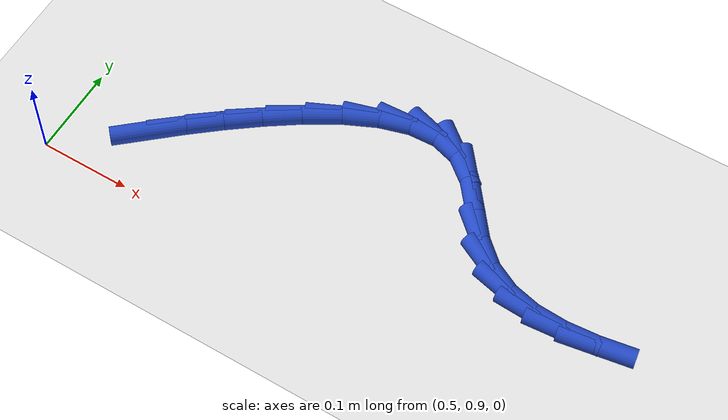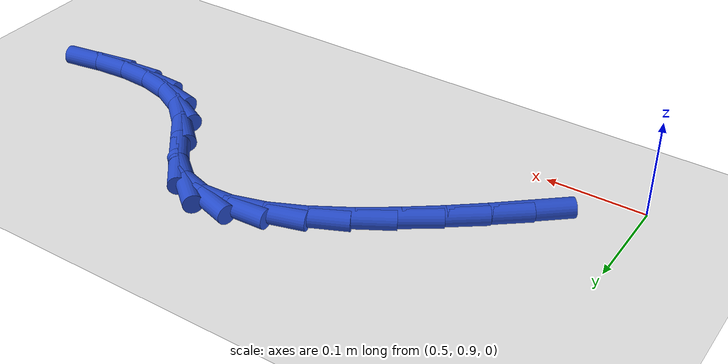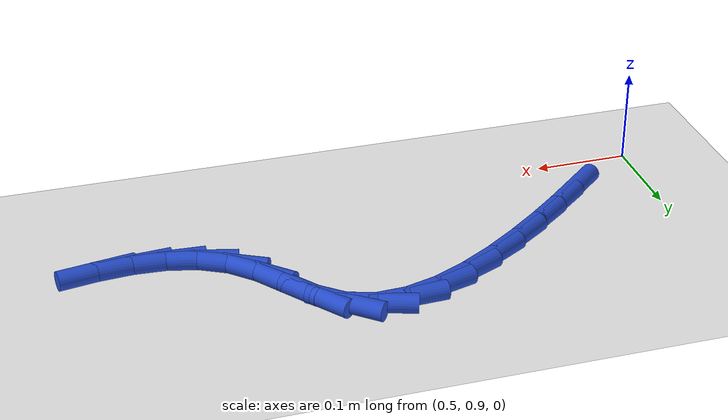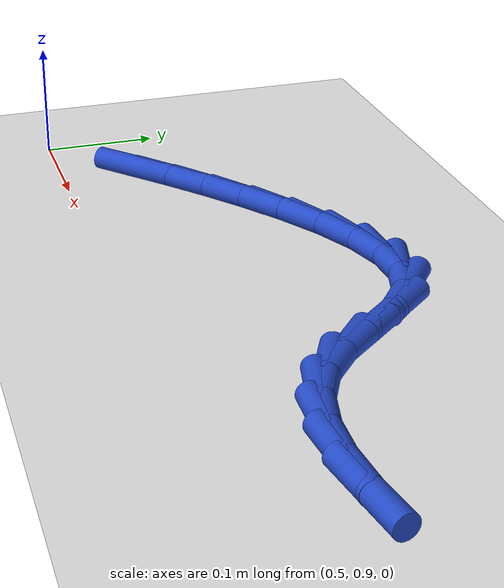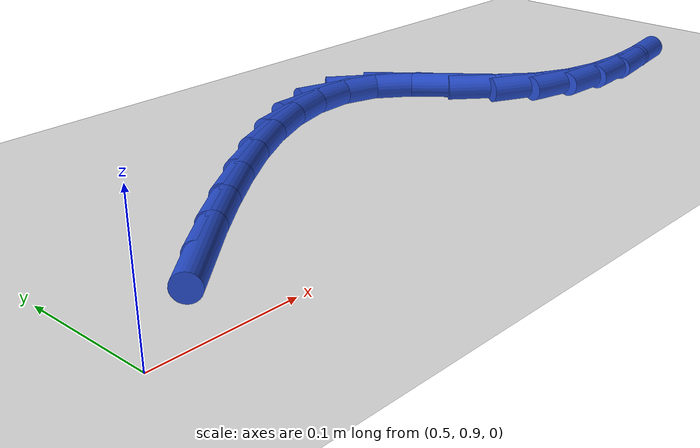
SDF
<sdf version="1.6">
 <world name="default">
  <model name="ground_plane">
   <static>1</static>
   <link name="link">
    <collision name="collision">
     <geometry><plane><normal>0 0 1</normal><size>100 100</size></plane></geometry>
     <surface><friction><ode><mu>100</mu><mu2>50</mu2></ode></friction></surface>
    </collision>
    <visual name="visual">
     <cast_shadows>0</cast_shadows>
     <geometry><plane><normal>0 0 1</normal><size>100 100</size></plane></geometry>
     <material>
      <script><uri>file://media/materials/scripts/gazebo.material</uri><name>Gazebo/WhiteGlow</name></script>
     </material>
    </visual>
   </link>
  </model>
  <model name="line">
   <link name="link_34">
    <pose>0.5853509259050875 0.9651663602946523 0.01 0 1.57 0.7190676207797878</pose>
    <collision name="collision">
     <geometry><cylinder><radius>0.01</radius><length>0.08</length></cylinder></geometry>
    </collision>
    <visual name="visual">
     <material>
      <script><name>Gazebo/Blue</name><uri>file://media/materials/scripts/gazebo.material</uri></script>
     </material>
     <geometry><cylinder><radius>0.01</radius><length>0.08</length></cylinder></geometry>
    </visual>
   </link>
   <link name="link_35">
    <pose>0.6144556753810498 0.9906452295192398 0.01 0 1.57 0.6872717512260096</pose>
    <collision name="collision">
     <geometry><cylinder><radius>0.01</radius><length>0.08</length></cylinder></geometry>
    </collision>
    <visual name="visual">
     <material>
      <script><name>Gazebo/Blue</name><uri>file://media/materials/scripts/gazebo.material</uri></script>
     </material>
     <geometry><cylinder><radius>0.01</radius><length>0.08</length></cylinder></geometry>
    </visual>
   </link>
   <link name="link_36">
    <pose>0.6455072540028757 1.0161311145639673 0.01 0 1.57 0.6538108150438107</pose>
    <collision name="collision">
     <geometry><cylinder><radius>0.01</radius><length>0.08</length></cylinder></geometry>
    </collision>
    <visual name="visual">
     <material>
      <script><name>Gazebo/Blue</name><uri>file://media/materials/scripts/gazebo.material</uri></script>
     </material>
     <geometry><cylinder><radius>0.01</radius><length>0.08</length></cylinder></geometry>
    </visual>
   </link>
   <link name="link_37">
    <pose>0.6786090806369028 1.0414948935218273 0.01 0 1.57 0.6074932444940689</pose>
    <collision name="collision">
     <geometry><cylinder><radius>0.01</radius><length>0.08</length></cylinder></geometry>
    </collision>
    <visual name="visual">
     <material>
      <script><name>Gazebo/Blue</name><uri>file://media/materials/scripts/gazebo.material</uri></script>
     </material>
     <geometry><cylinder><radius>0.01</radius><length>0.08</length></cylinder></geometry>
    </visual>
   </link>
   <link name="link_38">
    <pose>0.7131787086998016 1.0655274951940188 0.01 0 1.57 0.5381341451157671</pose>
    <collision name="collision">
     <geometry><cylinder><radius>0.01</radius><length>0.08</length></cylinder></geometry>
    </collision>
    <visual name="visual">
     <material>
      <script><name>Gazebo/Blue</name><uri>file://media/materials/scripts/gazebo.material</uri></script>
     </material>
     <geometry><cylinder><radius>0.01</radius><length>0.08</length></cylinder></geometry>
    </visual>
   </link>
   <link name="link_39">
    <pose>0.748296762517281 1.0864893269312939 0.01 0 1.57 0.4350559094443323</pose>
    <collision name="collision">
     <geometry><cylinder><radius>0.01</radius><length>0.08</length></cylinder></geometry>
    </collision>
    <visual name="visual">
     <material>
      <script><name>Gazebo/Blue</name><uri>file://media/materials/scripts/gazebo.material</uri></script>
     </material>
     <geometry><cylinder><radius>0.01</radius><length>0.08</length></cylinder></geometry>
    </visual>
   </link>
   <link name="link_40">
    <pose>0.7830415312503389 1.1026371191832327 0.01 0 1.57 0.27922271353270145</pose>
    <collision name="collision">
     <geometry><cylinder><radius>0.01</radius><length>0.08</length></cylinder></geometry>
    </collision>
    <visual name="visual">
     <material>
      <script><name>Gazebo/Blue</name><uri>file://media/materials/scripts/gazebo.material</uri></script>
     </material>
     <geometry><cylinder><radius>0.01</radius><length>0.08</length></cylinder></geometry>
    </visual>
   </link>
   <link name="link_41">
    <pose>0.8164913040599725 1.1122276023994127 0.01 0 1.57 0.041275871189068454</pose>
    <collision name="collision">
     <geometry><cylinder><radius>0.01</radius><length>0.08</length></cylinder></geometry>
    </collision>
    <visual name="visual">
     <material>
      <script><name>Gazebo/Blue</name><uri>file://media/materials/scripts/gazebo.material</uri></script>
     </material>
     <geometry><cylinder><radius>0.01</radius><length>0.08</length></cylinder></geometry>
    </visual>
   </link>
   <link name="link_42">
    <pose>0.8477243701071794 1.1135175070294143 0.01 0 1.57 -0.3020534082997455</pose>
    <collision name="collision">
     <geometry><cylinder><radius>0.01</radius><length>0.08</length></cylinder></geometry>
    </collision>
    <visual name="visual">
     <material>
      <script><name>Gazebo/Blue</name><uri>file://media/materials/scripts/gazebo.material</uri></script>
     </material>
     <geometry><cylinder><radius>0.01</radius><length>0.08</length></cylinder></geometry>
    </visual>
   </link>
   <link name="link_43">
    <pose>0.8758190185529571 1.1047635635228157 0.01 0 1.57 -0.6909817485402148</pose>
    <collision name="collision">
     <geometry><cylinder><radius>0.01</radius><length>0.08</length></cylinder></geometry>
    </collision>
    <visual name="visual">
     <material>
      <script><name>Gazebo/Blue</name><uri>file://media/materials/scripts/gazebo.material</uri></script>
     </material>
     <geometry><cylinder><radius>0.01</radius><length>0.08</length></cylinder></geometry>
    </visual>
   </link>
   <link name="link_44">
    <pose>0.9000581085399401 1.0847181284284804 0.01 0 1.57 -0.9024392311679303</pose>
    <collision name="collision">
     <geometry><cylinder><radius>0.01</radius><length>0.08</length></cylinder></geometry>
    </collision>
    <visual name="visual">
     <material>
      <script><name>Gazebo/Blue</name><uri>file://media/materials/scripts/gazebo.material</uri></script>
     </material>
     <geometry><cylinder><radius>0.01</radius><length>0.08</length></cylinder></geometry>
    </visual>
   </link>
   <link name="link_45">
    <pose>0.9218054783194697 1.057175292913835 0.01 0 1.57 -0.9137761795977895</pose>
    <collision name="collision">
     <geometry><cylinder><radius>0.01</radius><length>0.08</length></cylinder></geometry>
    </collision>
    <visual name="visual">
     <material>
      <script><name>Gazebo/Blue</name><uri>file://media/materials/scripts/gazebo.material</uri></script>
     </material>
     <geometry><cylinder><radius>0.01</radius><length>0.08</length></cylinder></geometry>
    </visual>
   </link>
   <link name="link_46">
    <pose>0.9436387041290661 1.0288697566306404 0.01 0 1.57 -0.7461342841469327</pose>
    <collision name="collision">
     <geometry><cylinder><radius>0.01</radius><length>0.08</length></cylinder></geometry>
    </collision>
    <visual name="visual">
     <material>
      <script><name>Gazebo/Blue</name><uri>file://media/materials/scripts/gazebo.material</uri></script>
     </material>
     <geometry><cylinder><radius>0.01</radius><length>0.08</length></cylinder></geometry>
    </visual>
   </link>
   <link name="link_47">
    <pose>0.9680474332112358 1.0063062866474355 0.01 0 1.57 -0.4812787876785755</pose>
    <collision name="collision">
     <geometry><cylinder><radius>0.01</radius><length>0.08</length></cylinder></geometry>
    </collision>
    <visual name="visual">
     <material>
      <script><name>Gazebo/Blue</name><uri>file://media/materials/scripts/gazebo.material</uri></script>
     </material>
     <geometry><cylinder><radius>0.01</radius><length>0.08</length></cylinder></geometry>
    </visual>
   </link>
   <link name="link_48">
    <pose>0.995888700539336 0.9917665380177938 0.01 0 1.57 -0.24199416337558027</pose>
    <collision name="collision">
     <geometry><cylinder><radius>0.01</radius><length>0.08</length></cylinder></geometry>
    </collision>
    <visual name="visual">
     <material>
      <script><name>Gazebo/Blue</name><uri>file://media/materials/scripts/gazebo.material</uri></script>
     </material>
     <geometry><cylinder><radius>0.01</radius><length>0.08</length></cylinder></geometry>
    </visual>
   </link>
   <link name="link_49">
    <pose>1.0267149856721542 0.9841576452495602 0.01 0 1.57 -0.055906371077151774</pose>
    <collision name="collision">
     <geometry><cylinder><radius>0.01</radius><length>0.08</length></cylinder></geometry>
    </collision>
    <visual name="visual">
     <material>
      <script><name>Gazebo/Blue</name><uri>file://media/materials/scripts/gazebo.material</uri></script>
     </material>
     <geometry><cylinder><radius>0.01</radius><length>0.08</length></cylinder></geometry>
    </visual>
   </link>
   <link name="link_50">
    <pose>1.0600423312438287 0.9822924907019327 0.01 0 1.57 0.07600293029042648</pose>
    <collision name="collision">
     <geometry><cylinder><radius>0.01</radius><length>0.08</length></cylinder></geometry>
    </collision>
    <visual name="visual">
     <material>
      <script><name>Gazebo/Blue</name><uri>file://media/materials/scripts/gazebo.material</uri></script>
     </material>
     <geometry><cylinder><radius>0.01</radius><length>0.08</length></cylinder></geometry>
    </visual>
   </link>
   <link name="link_51">
    <pose>1.0953867798884975 0.9849839567341087 0.01 0 1.57 0.16289737991464598</pose>
    <collision name="collision">
     <geometry><cylinder><radius>0.01</radius><length>0.08</length></cylinder></geometry>
    </collision>
    <visual name="visual">
     <material>
      <script><name>Gazebo/Blue</name><uri>file://media/materials/scripts/gazebo.material</uri></script>
     </material>
     <geometry><cylinder><radius>0.01</radius><length>0.08</length></cylinder></geometry>
    </visual>
   </link>
  </model>
 </world>
</sdf>
